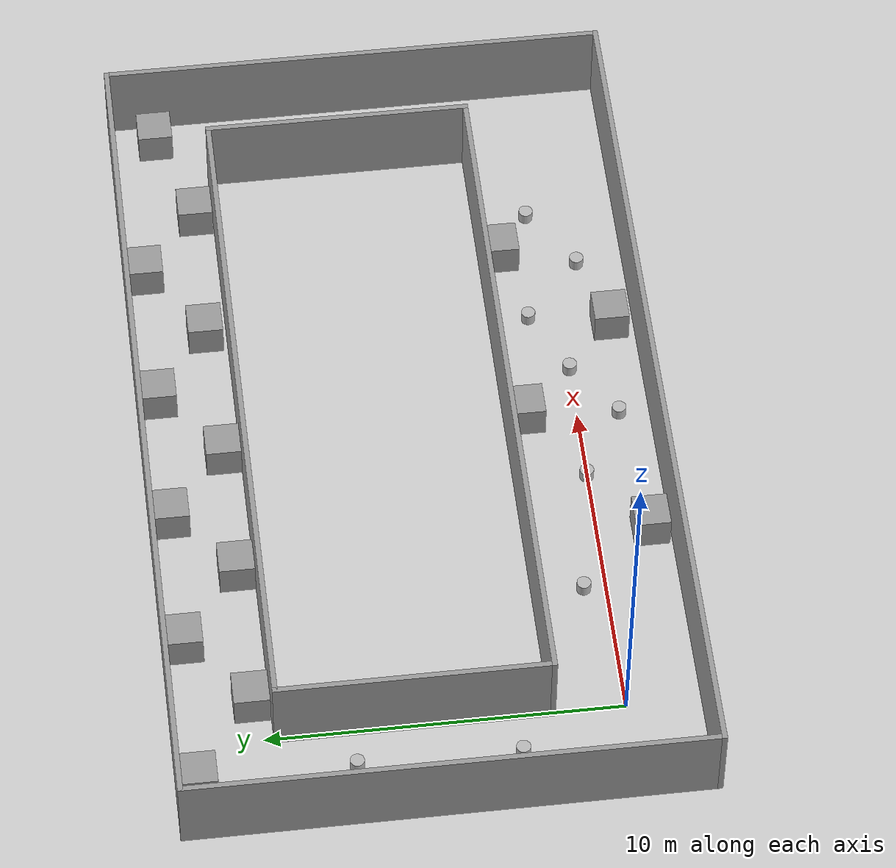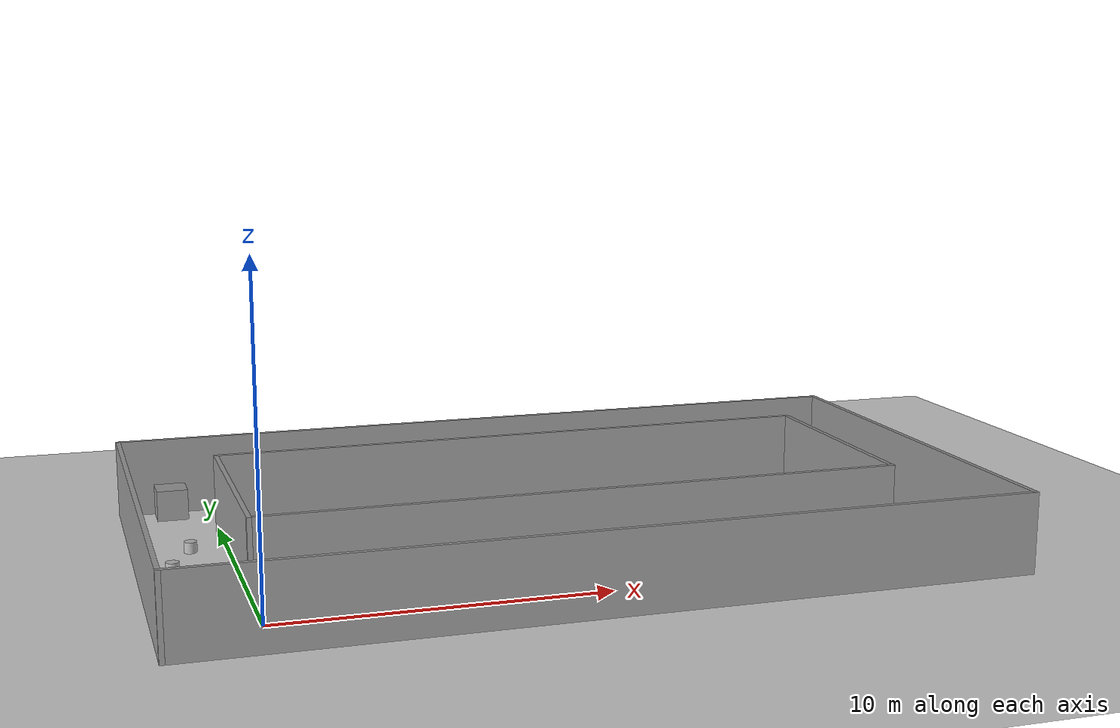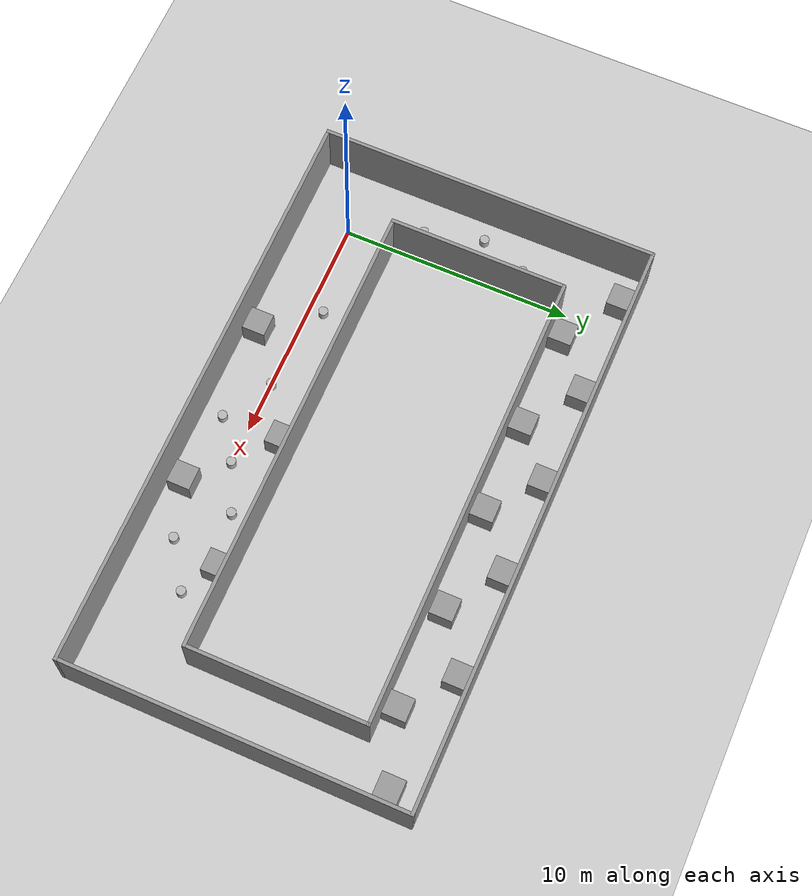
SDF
<sdf version="1.7">
 <world name="default">
  <light name="sun" type="directional">
   <pose>0 0 10 0 -0 0</pose>
   <diffuse>0.8 0.8 0.8 1</diffuse>
   <specular>0.2 0.2 0.2 1</specular>
   <attenuation>
    <range>1000</range>
    <constant>0.9</constant>
    <linear>0.01</linear>
    <quadratic>0.001</quadratic>
   </attenuation>
   <direction>-0.5 0.1 -0.9</direction>
   <spot><inner_angle>0</inner_angle><outer_angle>0</outer_angle><falloff>0</falloff></spot>
  </light>
  <model name="sphere1">
   <pose>11.6446 -0.006556 0.175 0 -0 0.018176</pose>
   <link name="link">
    <inertial>
     <mass>15</mass>
     <pose>0 0 -0.3 0 -0 0</pose>
     <inertia><ixx>1.4</ixx><ixy>0</ixy><ixz>0</ixz><iyy>1.4</iyy><iyz>0</iyz><izz>0.3</izz></inertia>
    </inertial>
    <collision name="collision">
     <geometry><cylinder><radius>0.2</radius><length>0.35</length></cylinder></geometry>
    </collision>
    <visual name="visual">
     <geometry><cylinder><radius>0.2</radius><length>0.35</length></cylinder></geometry>
    </visual>
   </link>
   <plugin name="move" filename="libgazebo_ros_planar_move.so">
    <ros><namespace>/sphere1</namespace></ros>
   </plugin>
  </model>
  <model name="sphere2">
   <pose>7.83428 0.019607 0.175 0 -0 1.57864</pose>
   <link name="link">
    <inertial>
     <mass>15</mass>
     <pose>0 0 -0.3 0 -0 0</pose>
     <inertia><ixx>1.4</ixx><ixy>0</ixy><ixz>0</ixz><iyy>1.4</iyy><iyz>0</iyz><izz>0.3</izz></inertia>
    </inertial>
    <collision name="collision">
     <geometry><cylinder><radius>0.2</radius><length>0.35</length></cylinder></geometry>
    </collision>
    <visual name="visual">
     <geometry><cylinder><radius>0.2</radius><length>0.35</length></cylinder></geometry>
    </visual>
   </link>
   <plugin name="move" filename="libgazebo_ros_planar_move.so">
    <ros><namespace>/sphere2</namespace></ros>
   </plugin>
  </model>
  <model name="sphere3">
   <pose>3.97967 0.632906 0.175 0 -0 1.5563</pose>
   <link name="link">
    <inertial>
     <mass>15</mass>
     <pose>0 0 -0.3 0 -0 0</pose>
     <inertia><ixx>1.4</ixx><ixy>0</ixy><ixz>0</ixz><iyy>1.4</iyy><iyz>0</iyz><izz>0.3</izz></inertia>
    </inertial>
    <collision name="collision">
     <geometry><cylinder><radius>0.2</radius><length>0.35</length></cylinder></geometry>
    </collision>
    <visual name="visual">
     <geometry><cylinder><radius>0.2</radius><length>0.35</length></cylinder></geometry>
    </visual>
   </link>
   <plugin name="move" filename="libgazebo_ros_planar_move.so">
    <ros><namespace>/sphere3</namespace></ros>
   </plugin>
  </model>
  <model name="sphere4">
   <pose>17.3975 0.526582 0.175 0 0 -0.405964</pose>
   <link name="link">
    <inertial>
     <mass>15</mass>
     <pose>0 0 -0.3 0 -0 0</pose>
     <inertia><ixx>1.4</ixx><ixy>0</ixy><ixz>0</ixz><iyy>1.4</iyy><iyz>0</iyz><izz>0.3</izz></inertia>
    </inertial>
    <collision name="collision">
     <geometry><cylinder><radius>0.2</radius><length>0.35</length></cylinder></geometry>
    </collision>
    <visual name="visual">
     <geometry><cylinder><radius>0.2</radius><length>0.35</length></cylinder></geometry>
    </visual>
   </link>
   <plugin name="move" filename="libgazebo_ros_planar_move.so">
    <ros><namespace>/sphere4</namespace></ros>
   </plugin>
  </model>
  <model name="sphere5">
   <pose>9.93813 -1.20438 0.175 0 -0 0</pose>
   <link name="link">
    <inertial>
     <mass>15</mass>
     <pose>0 0 -0.3 0 -0 0</pose>
     <inertia><ixx>1.4</ixx><ixy>0</ixy><ixz>0</ixz><iyy>1.4</iyy><iyz>0</iyz><izz>0.3</izz></inertia>
    </inertial>
    <collision name="collision">
     <geometry><cylinder><radius>0.2</radius><length>0.35</length></cylinder></geometry>
    </collision>
    <visual name="visual">
     <geometry><cylinder><radius>0.2</radius><length>0.35</length></cylinder></geometry>
    </visual>
   </link>
   <plugin name="move" filename="libgazebo_ros_planar_move.so">
    <ros><namespace>/sphere5</namespace></ros>
   </plugin>
  </model>
  <model name="sphere6">
   <pose>13.6322 0.938598 0.175 0 0 -0.993107</pose>
   <link name="link">
    <inertial>
     <mass>15</mass>
     <pose>0 0 -0.3 0 -0 0</pose>
     <inertia><ixx>1.4</ixx><ixy>0</ixy><ixz>0</ixz><iyy>1.4</iyy><iyz>0</iyz><izz>0.3</izz></inertia>
    </inertial>
    <collision name="collision">
     <geometry><cylinder><radius>0.2</radius><length>0.35</length></cylinder></geometry>
    </collision>
    <visual name="visual">
     <geometry><cylinder><radius>0.2</radius><length>0.35</length></cylinder></geometry>
    </visual>
   </link>
   <plugin name="move" filename="libgazebo_ros_planar_move.so">
    <ros><namespace>/sphere6</namespace></ros>
   </plugin>
  </model>
  <model name="sphere7">
   <pose>15.4958 -0.726075 0.175 0 -0 -3.13252</pose>
   <link name="link">
    <inertial>
     <mass>15</mass>
     <pose>0 0 -0.3 0 -0 0</pose>
     <inertia><ixx>1.4</ixx><ixy>0</ixy><ixz>0</ixz><iyy>1.4</iyy><iyz>0</iyz><izz>0.3</izz></inertia>
    </inertial>
    <collision name="collision">
     <geometry><cylinder><radius>0.2</radius><length>0.35</length></cylinder></geometry>
    </collision>
    <visual name="visual">
     <geometry><cylinder><radius>0.2</radius><length>0.35</length></cylinder></geometry>
    </visual>
   </link>
   <plugin name="move" filename="libgazebo_ros_planar_move.so">
    <ros><namespace>/sphere7</namespace></ros>
   </plugin>
  </model>
  <model name="sphere8">
   <pose>-1.13331 7.54749 0.175 0 -0 1.55247</pose>
   <link name="link">
    <inertial>
     <mass>15</mass>
     <pose>0 0 -0.3 0 -0 0</pose>
     <inertia><ixx>1.4</ixx><ixy>0</ixy><ixz>0</ixz><iyy>1.4</iyy><iyz>0</iyz><izz>0.3</izz></inertia>
    </inertial>
    <collision name="collision">
     <geometry><cylinder><radius>0.2</radius><length>0.35</length></cylinder></geometry>
    </collision>
    <visual name="visual">
     <geometry><cylinder><radius>0.2</radius><length>0.35</length></cylinder></geometry>
    </visual>
   </link>
   <plugin name="move" filename="libgazebo_ros_planar_move.so">
    <ros><namespace>/sphere8</namespace></ros>
   </plugin>
  </model>
  <model name="sphere9">
   <pose>-1.86848 5.52388 0.175 0 -0 1.56392</pose>
   <link name="link">
    <inertial>
     <mass>15</mass>
     <pose>0 0 -0.3 0 -0 0</pose>
     <inertia><ixx>1.4</ixx><ixy>0</ixy><ixz>0</ixz><iyy>1.4</iyy><iyz>0</iyz><izz>0.3</izz></inertia>
    </inertial>
    <collision name="collision">
     <geometry><cylinder><radius>0.2</radius><length>0.35</length></cylinder></geometry>
    </collision>
    <visual name="visual">
     <geometry><cylinder><radius>0.2</radius><length>0.35</length></cylinder></geometry>
    </visual>
   </link>
   <plugin name="move" filename="libgazebo_ros_planar_move.so">
    <ros><namespace>/sphere9</namespace></ros>
   </plugin>
  </model>
  <model name="sphere10">
   <pose>-1.20535 3.00365 0.175 0 -0 0</pose>
   <link name="link">
    <inertial>
     <mass>15</mass>
     <pose>0 0 -0.3 0 -0 0</pose>
     <inertia><ixx>1.4</ixx><ixy>0</ixy><ixz>0</ixz><iyy>1.4</iyy><iyz>0</iyz><izz>0.3</izz></inertia>
    </inertial>
    <collision name="collision">
     <geometry><cylinder><radius>0.2</radius><length>0.35</length></cylinder></geometry>
    </collision>
    <visual name="visual">
     <geometry><cylinder><radius>0.2</radius><length>0.35</length></cylinder></geometry>
    </visual>
   </link>
   <plugin name="move" filename="libgazebo_ros_planar_move.so">
    <ros><namespace>/sphere10</namespace></ros>
   </plugin>
  </model>
  <model name="ground_plane">
   <static>1</static>
   <link name="link">
    <collision name="collision">
     <geometry><plane><normal>0 0 1</normal><size>100 100</size></plane></geometry>
     <surface><friction><ode><mu>100</mu><mu2>50</mu2></ode></friction></surface>
    </collision>
    <visual name="visual">
     <cast_shadows>0</cast_shadows>
     <geometry><plane><normal>0 0 1</normal><size>100 100</size></plane></geometry>
     <material>
      <script><uri>file://media/materials/scripts/gazebo.material</uri><name>Gazebo/Grey</name></script>
     </material>
    </visual>
   </link>
  </model>
  <gravity>0 0 -9.8</gravity>
  <magnetic_field>6e-06 2.3e-05 -4.2e-05</magnetic_field>
  <atmosphere type="adiabatic"/>
  <physics type="ode">
   <max_step_size>0.001</max_step_size>
   <real_time_factor>1</real_time_factor>
   <real_time_update_rate>1000</real_time_update_rate>
  </physics>
  <scene><ambient>0.4 0.4 0.4 1</ambient><background>0.7 0.7 0.7 1</background><shadows>1</shadows></scene>
  <audio><device>default</device></audio>
  <spherical_coordinates>
   <surface_model>EARTH_WGS84</surface_model>
   <latitude_deg>0</latitude_deg>
   <longitude_deg>0</longitude_deg>
   <elevation>0</elevation>
   <heading_deg>0</heading_deg>
  </spherical_coordinates>
  <model name="lobbyv4">
   <pose>9.68583 5.1496 0 0 -0 0</pose>
   <link name="Wall_35">
    <collision name="Wall_35_Collision">
     <geometry><box><size>25.25 0.15 2.5</size></box></geometry>
     <pose>0 0 1.25 0 -0 0</pose>
    </collision>
    <visual name="Wall_35_Visual">
     <pose>0 0 1.25 0 -0 0</pose>
     <geometry><box><size>25.25 0.15 2.5</size></box></geometry>
     <material>
      <script><uri>file://media/materials/scripts/gazebo.material</uri><name>Gazebo/Grey</name></script>
      <ambient>1 1 1 1</ambient>
     </material>
     <meta><layer>0</layer></meta>
    </visual>
    <pose>-1e-06 7.3 0 0 -0 0</pose>
   </link>
   <link name="Wall_36">
    <collision name="Wall_36_Collision">
     <geometry><box><size>14.75 0.15 2.5</size></box></geometry>
     <pose>0 0 1.25 0 -0 0</pose>
    </collision>
    <visual name="Wall_36_Visual">
     <pose>0 0 1.25 0 -0 0</pose>
     <geometry><box><size>14.75 0.15 2.5</size></box></geometry>
     <material>
      <script><uri>file://media/materials/scripts/gazebo.material</uri><name>Gazebo/Grey</name></script>
      <ambient>1 1 1 1</ambient>
     </material>
     <meta><layer>0</layer></meta>
    </visual>
    <pose>12.55 -0 0 0 -0 -1.5708</pose>
   </link>
   <link name="Wall_37">
    <collision name="Wall_37_Collision">
     <geometry><box><size>25.25 0.15 2.5</size></box></geometry>
     <pose>0 0 1.25 0 -0 0</pose>
    </collision>
    <visual name="Wall_37_Visual">
     <pose>0 0 1.25 0 -0 0</pose>
     <geometry><box><size>25.25 0.15 2.5</size></box></geometry>
     <material>
      <script><uri>file://media/materials/scripts/gazebo.material</uri><name>Gazebo/Grey</name></script>
      <ambient>1 1 1 1</ambient>
     </material>
     <meta><layer>0</layer></meta>
    </visual>
    <pose>-1e-06 -7.3 0 0 -0 3.14159</pose>
   </link>
   <link name="Wall_38">
    <collision name="Wall_38_Collision">
     <geometry><box><size>14.75 0.15 2.5</size></box></geometry>
     <pose>0 0 1.25 0 -0 0</pose>
    </collision>
    <visual name="Wall_38_Visual">
     <pose>0 0 1.25 0 -0 0</pose>
     <geometry><box><size>14.75 0.15 2.5</size></box></geometry>
     <material>
      <script><uri>file://media/materials/scripts/gazebo.material</uri><name>Gazebo/Grey</name></script>
      <ambient>1 1 1 1</ambient>
     </material>
     <meta><layer>0</layer></meta>
    </visual>
    <pose>-12.55 -0 0 0 -0 1.5708</pose>
   </link>
   <link name="Wall_44">
    <collision name="Wall_44_Collision">
     <geometry><box><size>20 0.15 2.5</size></box></geometry>
     <pose>0 0 1.25 0 -0 0</pose>
    </collision>
    <visual name="Wall_44_Visual">
     <pose>0 0 1.25 0 -0 0</pose>
     <geometry><box><size>20 0.15 2.5</size></box></geometry>
     <material>
      <script><uri>file://media/materials/scripts/gazebo.material</uri><name>Gazebo/Grey</name></script>
      <ambient>1 1 1 1</ambient>
     </material>
     <meta><layer>0</layer></meta>
    </visual>
    <pose>0.212351 4.49807 0 0 -0 0</pose>
   </link>
   <link name="Wall_45">
    <collision name="Wall_45_Collision">
     <geometry><box><size>7.75 0.15 2.5</size></box></geometry>
     <pose>0 0 1.25 0 -0 0</pose>
    </collision>
    <visual name="Wall_45_Visual">
     <pose>0 0 1.25 0 -0 0</pose>
     <geometry><box><size>7.75 0.15 2.5</size></box></geometry>
     <material>
      <script><uri>file://media/materials/scripts/gazebo.material</uri><name>Gazebo/Grey</name></script>
      <ambient>1 1 1 1</ambient>
     </material>
     <meta><layer>0</layer></meta>
    </visual>
    <pose>10.1374 0.698066 0 0 -0 -1.5708</pose>
   </link>
   <link name="Wall_49">
    <collision name="Wall_49_Collision">
     <geometry><box><size>20 0.15 2.5</size></box></geometry>
     <pose>0 0 1.25 0 -0 0</pose>
    </collision>
    <visual name="Wall_49_Visual">
     <pose>0 0 1.25 0 -0 0</pose>
     <geometry><box><size>20 0.15 2.5</size></box></geometry>
     <material>
      <script><uri>file://media/materials/scripts/gazebo.material</uri><name>Gazebo/Grey</name></script>
      <ambient>1 1 1 1</ambient>
     </material>
     <meta><layer>0</layer></meta>
    </visual>
    <pose>0.212351 -3.10193 0 0 -0 3.14159</pose>
   </link>
   <link name="Wall_50">
    <collision name="Wall_50_Collision">
     <geometry><box><size>7.75 0.15 2.5</size></box></geometry>
     <pose>0 0 1.25 0 -0 0</pose>
    </collision>
    <visual name="Wall_50_Visual">
     <pose>0 0 1.25 0 -0 0</pose>
     <geometry><box><size>7.75 0.15 2.5</size></box></geometry>
     <material>
      <script><uri>file://media/materials/scripts/gazebo.material</uri><name>Gazebo/Grey</name></script>
      <ambient>1 1 1 1</ambient>
     </material>
     <meta><layer>0</layer></meta>
    </visual>
    <pose>-9.71265 0.698066 0 0 -0 1.5708</pose>
   </link>
   <static>1</static>
  </model>
  <model name="unit_box">
   <pose>10.0259 1.47269 0.5 0 -0 6e-06</pose>
   <link name="link">
    <inertial>
     <mass>1</mass>
     <inertia>
      <ixx>0.166667</ixx>
      <ixy>0</ixy>
      <ixz>0</ixz>
      <iyy>0.166667</iyy>
      <iyz>0</iyz>
      <izz>0.166667</izz>
     </inertia>
    </inertial>
    <collision name="collision"><geometry><box><size>1 1 1</size></box></geometry></collision>
    <visual name="visual">
     <geometry><box><size>1 1 1</size></box></geometry>
     <material>
      <script><name>Gazebo/Grey</name><uri>file://media/materials/scripts/gazebo.material</uri></script>
     </material>
    </visual>
   </link>
  </model>
  <model name="unit_box_0">
   <pose>5.7804 -1.49812 0.499995 0 1e-05 0</pose>
   <link name="link">
    <inertial>
     <mass>1</mass>
     <inertia>
      <ixx>0.166667</ixx>
      <ixy>0</ixy>
      <ixz>0</ixz>
      <iyy>0.166667</iyy>
      <iyz>0</iyz>
      <izz>0.166667</izz>
     </inertia>
    </inertial>
    <collision name="collision"><geometry><box><size>1 1 1</size></box></geometry></collision>
    <visual name="visual">
     <geometry><box><size>1 1 1</size></box></geometry>
     <material>
      <script><name>Gazebo/Grey</name><uri>file://media/materials/scripts/gazebo.material</uri></script>
     </material>
    </visual>
   </link>
  </model>
  <model name="unit_box_1">
   <pose>15.9771 1.47267 0.5 0 0 -2e-06</pose>
   <link name="link">
    <inertial>
     <mass>1</mass>
     <inertia>
      <ixx>0.166667</ixx>
      <ixy>0</ixy>
      <ixz>0</ixz>
      <iyy>0.166667</iyy>
      <iyz>0</iyz>
      <izz>0.166667</izz>
     </inertia>
    </inertial>
    <collision name="collision"><geometry><box><size>1 1 1</size></box></geometry></collision>
    <visual name="visual">
     <geometry><box><size>1 1 1</size></box></geometry>
     <material>
      <script><name>Gazebo/Grey</name><uri>file://media/materials/scripts/gazebo.material</uri></script>
     </material>
    </visual>
   </link>
  </model>
  <model name="unit_box_2">
   <pose>13.1517 -1.37096 0.499995 1e-05 -0 0</pose>
   <link name="link">
    <inertial>
     <mass>1</mass>
     <inertia>
      <ixx>0.166667</ixx>
      <ixy>0</ixy>
      <ixz>0</ixz>
      <iyy>0.166667</iyy>
      <iyz>0</iyz>
      <izz>0.166667</izz>
     </inertia>
    </inertial>
    <collision name="collision"><geometry><box><size>1 1 1</size></box></geometry></collision>
    <visual name="visual">
     <geometry><box><size>1 1 1</size></box></geometry>
     <material>
      <script><name>Gazebo/Grey</name><uri>file://media/materials/scripts/gazebo.material</uri></script>
     </material>
    </visual>
   </link>
  </model>
  <model name="unit_box_3">
   <pose>-1.29123 11.8746 0.499995 1e-05 -0 0</pose>
   <link name="link">
    <inertial>
     <mass>1</mass>
     <inertia>
      <ixx>0.166667</ixx>
      <ixy>0</ixy>
      <ixz>0</ixz>
      <iyy>0.166667</iyy>
      <iyz>0</iyz>
      <izz>0.166667</izz>
     </inertia>
    </inertial>
    <collision name="collision"><geometry><box><size>1 1 1</size></box></geometry></collision>
    <visual name="visual">
     <geometry><box><size>1 1 1</size></box></geometry>
     <material>
      <script><name>Gazebo/Grey</name><uri>file://media/materials/scripts/gazebo.material</uri></script>
     </material>
    </visual>
   </link>
  </model>
  <model name="unit_box_4">
   <pose>1.14501 10.2311 0.499995 -1e-05 0 -1e-06</pose>
   <link name="link">
    <inertial>
     <mass>1</mass>
     <inertia>
      <ixx>0.166667</ixx>
      <ixy>0</ixy>
      <ixz>0</ixz>
      <iyy>0.166667</iyy>
      <iyz>0</iyz>
      <izz>0.166667</izz>
     </inertia>
    </inertial>
    <collision name="collision"><geometry><box><size>1 1 1</size></box></geometry></collision>
    <visual name="visual">
     <geometry><box><size>1 1 1</size></box></geometry>
     <material>
      <script><name>Gazebo/Grey</name><uri>file://media/materials/scripts/gazebo.material</uri></script>
     </material>
    </visual>
   </link>
  </model>
  <model name="unit_box_5">
   <pose>3.26519 11.8746 0.5 0 -0 0</pose>
   <link name="link">
    <inertial>
     <mass>1</mass>
     <inertia>
      <ixx>0.166667</ixx>
      <ixy>0</ixy>
      <ixz>0</ixz>
      <iyy>0.166667</iyy>
      <iyz>0</iyz>
      <izz>0.166667</izz>
     </inertia>
    </inertial>
    <collision name="collision"><geometry><box><size>1 1 1</size></box></geometry></collision>
    <visual name="visual">
     <geometry><box><size>1 1 1</size></box></geometry>
     <material>
      <script><name>Gazebo/Grey</name><uri>file://media/materials/scripts/gazebo.material</uri></script>
     </material>
    </visual>
   </link>
  </model>
  <model name="unit_box_6">
   <pose>5.53594 10.2227 0.499995 1e-05 -0 0</pose>
   <link name="link">
    <inertial>
     <mass>1</mass>
     <inertia>
      <ixx>0.166667</ixx>
      <ixy>0</ixy>
      <ixz>0</ixz>
      <iyy>0.166667</iyy>
      <iyz>0</iyz>
      <izz>0.166667</izz>
     </inertia>
    </inertial>
    <collision name="collision"><geometry><box><size>1 1 1</size></box></geometry></collision>
    <visual name="visual">
     <geometry><box><size>1 1 1</size></box></geometry>
     <material>
      <script><name>Gazebo/Grey</name><uri>file://media/materials/scripts/gazebo.material</uri></script>
     </material>
    </visual>
   </link>
  </model>
  <model name="unit_box_7">
   <pose>7.53442 11.8746 0.499995 -1e-05 0 -9e-06</pose>
   <link name="link">
    <inertial>
     <mass>1</mass>
     <inertia>
      <ixx>0.166667</ixx>
      <ixy>0</ixy>
      <ixz>0</ixz>
      <iyy>0.166667</iyy>
      <iyz>0</iyz>
      <izz>0.166667</izz>
     </inertia>
    </inertial>
    <collision name="collision"><geometry><box><size>1 1 1</size></box></geometry></collision>
    <visual name="visual">
     <geometry><box><size>1 1 1</size></box></geometry>
     <material>
      <script><name>Gazebo/Grey</name><uri>file://media/materials/scripts/gazebo.material</uri></script>
     </material>
    </visual>
   </link>
  </model>
  <model name="unit_box_8">
   <pose>9.6013 10.2227 0.5 -0 -0 -7e-06</pose>
   <link name="link">
    <inertial>
     <mass>1</mass>
     <inertia>
      <ixx>0.166667</ixx>
      <ixy>0</ixy>
      <ixz>0</ixz>
      <iyy>0.166667</iyy>
      <iyz>0</iyz>
      <izz>0.166667</izz>
     </inertia>
    </inertial>
    <collision name="collision"><geometry><box><size>1 1 1</size></box></geometry></collision>
    <visual name="visual">
     <geometry><box><size>1 1 1</size></box></geometry>
     <material>
      <script><name>Gazebo/Grey</name><uri>file://media/materials/scripts/gazebo.material</uri></script>
     </material>
    </visual>
   </link>
  </model>
  <model name="unit_box_9">
   <pose>11.7715 11.8746 0.5 0 -0 0</pose>
   <link name="link">
    <inertial>
     <mass>1</mass>
     <inertia>
      <ixx>0.166667</ixx>
      <ixy>0</ixy>
      <ixz>0</ixz>
      <iyy>0.166667</iyy>
      <iyz>0</iyz>
      <izz>0.166667</izz>
     </inertia>
    </inertial>
    <collision name="collision"><geometry><box><size>1 1 1</size></box></geometry></collision>
    <visual name="visual">
     <geometry><box><size>1 1 1</size></box></geometry>
     <material>
      <script><name>Gazebo/Grey</name><uri>file://media/materials/scripts/gazebo.material</uri></script>
     </material>
    </visual>
   </link>
  </model>
  <model name="unit_box_12">
   <pose>14.0007 10.3392 0.499995 0 1e-05 -1e-06</pose>
   <link name="link">
    <inertial>
     <mass>1</mass>
     <inertia>
      <ixx>0.166667</ixx>
      <ixy>0</ixy>
      <ixz>0</ixz>
      <iyy>0.166667</iyy>
      <iyz>0</iyz>
      <izz>0.166667</izz>
     </inertia>
    </inertial>
    <collision name="collision"><geometry><box><size>1 1 1</size></box></geometry></collision>
    <visual name="visual">
     <geometry><box><size>1 1 1</size></box></geometry>
     <material>
      <script><name>Gazebo/Grey</name><uri>file://media/materials/scripts/gazebo.material</uri></script>
     </material>
    </visual>
   </link>
  </model>
  <model name="unit_box_13">
   <pose>16.3248 11.8746 0.499995 -0 1e-05 1e-06</pose>
   <link name="link">
    <inertial>
     <mass>1</mass>
     <inertia>
      <ixx>0.166667</ixx>
      <ixy>0</ixy>
      <ixz>0</ixz>
      <iyy>0.166667</iyy>
      <iyz>0</iyz>
      <izz>0.166667</izz>
     </inertia>
    </inertial>
    <collision name="collision"><geometry><box><size>1 1 1</size></box></geometry></collision>
    <visual name="visual">
     <geometry><box><size>1 1 1</size></box></geometry>
     <material>
      <script><name>Gazebo/Grey</name><uri>file://media/materials/scripts/gazebo.material</uri></script>
     </material>
    </visual>
   </link>
  </model>
  <model name="unit_box_11">
   <pose>18.3741 10.2472 0.499995 0 1e-05 -6e-06</pose>
   <link name="link">
    <inertial>
     <mass>1</mass>
     <inertia>
      <ixx>0.166667</ixx>
      <ixy>0</ixy>
      <ixz>0</ixz>
      <iyy>0.166667</iyy>
      <iyz>0</iyz>
      <izz>0.166667</izz>
     </inertia>
    </inertial>
    <collision name="collision"><geometry><box><size>1 1 1</size></box></geometry></collision>
    <visual name="visual">
     <geometry><box><size>1 1 1</size></box></geometry>
     <material>
      <script><name>Gazebo/Grey</name><uri>file://media/materials/scripts/gazebo.material</uri></script>
     </material>
    </visual>
   </link>
  </model>
  <model name="unit_box_14">
   <pose>21.3864 11.1759 0.499995 1e-05 -0 0</pose>
   <link name="link">
    <inertial>
     <mass>1</mass>
     <inertia>
      <ixx>0.166667</ixx>
      <ixy>0</ixy>
      <ixz>0</ixz>
      <iyy>0.166667</iyy>
      <iyz>0</iyz>
      <izz>0.166667</izz>
     </inertia>
    </inertial>
    <collision name="collision"><geometry><box><size>1 1 1</size></box></geometry></collision>
    <visual name="visual">
     <geometry><box><size>1 1 1</size></box></geometry>
     <material>
      <script><name>Gazebo/Grey</name><uri>file://media/materials/scripts/gazebo.material</uri></script>
     </material>
    </visual>
   </link>
  </model>
 </world>
</sdf>
